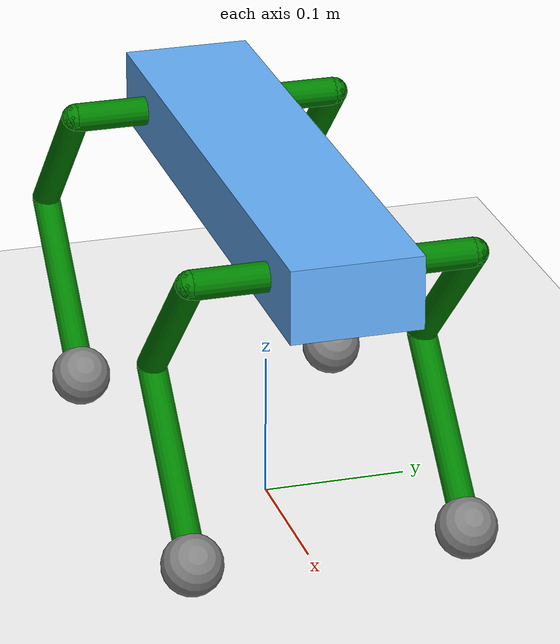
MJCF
<mujoco>
    <include file="basic_scene.xml" />

    <worldbody>
        <light diffuse=".5 .5 .5" pos="0 0 50" dir="0 0 -1"/>

        <body name="world_coordinate" pos="0 0 0">
            <geom name="ground" type="plane" size="0 0 0.03" material="matplane" rgba="1 1 1 1"/>
        </body>

        <body name="main_body" pos="0 0 0.23" euler="0 0 0">
            <joint name="rail" type="free"/>

            <geom name="box" mass="5.5" type="box" size="0.2025 0.044 0.025" rgba="0.4 0.7 1.0 1"/>
            <site name="imu" size="0.02" pos="0 0 0"/>

            <body name="FL" pos="0.1505 0.044 0">
                <joint name="ADACMotor_FL" type="hinge" pos="0 0 0" axis="1 0 0" stiffness="0.2" damping="0.5" armature="0.0065"/>
                <geom name="ADAC_FL" type="capsule" mass="0.02" size="0.01" fromto="0 0 0 0 0.05 0" rgba="0.0 0.5 0.0 1"/>

                <body name="UpLegFrame_FL" pos="0 0.05 0" euler="0 -45 0">
                    <joint name="HipMotor_FL" type="hinge" pos="0 0 0" axis="0 1 0" stiffness="0" damping="0.1" armature="0.0065"/>
                    <geom name="UpLeg_FL" type="capsule" mass="0.055" size="0.01" fromto="0 0 0 -0.14 0 0" rgba="0.0 0.5 0.0 1"/>

                    <body name="DownLegFrame_FL" pos="-0.14 0 0" euler="0 90 0">
                        <joint name="KneeMotor_FL" type="hinge" pos="0 0 0" axis="0 1 0" stiffness="0" damping="0.1" armature="0.0065"/>
                        <geom name="DownLeg_FL" type="capsule" mass="0.055" size="0.01" fromto="0 0 0 0.14 0 0" rgba="0.0 0.5 0.0 1"/>

                        <body name="FootFrame_FL" pos="0.14 0 0">
                            <geom name="Foot_FL" type="sphere" mass="0" size="0.02" rgba="1.0 1.0 0.1 1"/>
                            <site name="Foot_FL_contact" size="0.021"/>
                        </body>
                    </body>
                </body>
            </body>

            <body name="FR" pos="0.1505 -0.044 0">
                <joint name="ADACMotor_FR" type="hinge" pos="0 0 0" axis="1 0 0" stiffness="0.2" damping="0.5" armature="0.0065"/>
                <geom name="ADAC_FR" type="capsule" mass="0.02" size="0.01" fromto="0 0 0 0 -0.05 0" rgba="0.0 0.5 0.0 1"/>

                <body name="UpLegFrame_FR" pos="0 -0.05 0" euler="0 -45 0">
                    <joint name="HipMotor_FR" type="hinge" pos="0 0 0" axis="0 1 0" stiffness="0" damping="0.1" armature="0.0065"/>
                    <geom name="UpLeg_FR" type="capsule" mass="0.055" size="0.01" fromto="0 0 0 -0.14 0 0" rgba="0.0 0.5 0.0 1"/>

                    <body name="DownLegFrame_FR" pos="-0.14 0 0" euler="0 90 0">
                        <joint name="KneeMotor_FR" type="hinge" pos="0 0 0" axis="0 1 0" stiffness="0" damping="0.1" armature="0.0065"/>
                        <geom name="DownLeg_FR" type="capsule" mass="0.055" size="0.01" fromto="0 0 0 0.14 0 0" rgba="0.0 0.5 0.0 1"/>

                        <body name="FootFrame_FR" pos="0.14 0 0">
                            <geom name="Foot_FR" type="sphere" mass="0" size="0.02" rgba="1.0 1.0 0.1 1"/>
                            <site name="Foot_FR_contact" size="0.021"/>
                        </body>
                    </body>
                </body>
            </body>

            <body name="RL" pos="-0.1505 0.044 0">
                <joint name="ADACMotor_RL" type="hinge" pos="0 0 0" axis="1 0 0" stiffness="0.2" damping="0.5" armature="0.0065"/>
                <geom name="ADAC_RL" type="capsule" mass="0.02" size="0.01" fromto="0 0 0 0 0.05 0" rgba="0.0 0.5 0.0 1"/>

                <body name="UpLegFrame_RL" pos="0 0.05 0" euler="0 -45 0">
                    <joint name="HipMotor_RL" type="hinge" pos="0 0 0" axis="0 1 0" stiffness="0" damping="0.1" armature="0.0065"/>
                    <geom name="UpLeg_RL" type="capsule" mass="0.055" size="0.01" fromto="0 0 0 -0.14 0 0" rgba="0.0 0.5 0.0 1"/>

                    <body name="DownLegFrame_RL" pos="-0.14 0 0" euler="0 90 0">
                        <joint name="KneeMotor_RL" type="hinge" pos="0 0 0" axis="0 1 0" stiffness="0" damping="0.1" armature="0.0065"/>
                        <geom name="DownLeg_RL" type="capsule" mass="0.055" size="0.01" fromto="0 0 0 0.14 0 0" rgba="0.0 0.5 0.0 1"/>

                        <body name="FootFrame_RL" pos="0.14 0 0">
                            <geom name="Foot_RL" type="sphere" mass="0" size="0.02" rgba="1.0 1.0 0.1 1"/>
                            <site name="Foot_RL_contact" size="0.021"/>
                        </body>
                    </body>
                </body>
            </body>

            <body name="RR" pos="-0.1505 -0.044 0">
                <joint name="ADACMotor_RR" type="hinge" pos="0 0 0" axis="1 0 0" stiffness="0.2" damping="0.5" armature="0.0065"/>
                <geom name="ADAC_RR" type="capsule" mass="0.02" size="0.01" fromto="0 0 0 0 -0.05 0" rgba="0.0 0.5 0.0 1"/>

                <body name="UpLegFrame_RR" pos="0 -0.05 0" euler="0 -45 0">
                    <joint name="HipMotor_RR" type="hinge" pos="0 0 0" axis="0 1 0" stiffness="0" damping="0.1" armature="0.0065"/>
                    <geom name="UpLeg_RR" type="capsule" mass="0.055" size="0.01" fromto="0 0 0 -0.14 0 0" rgba="0.0 0.5 0.0 1"/>

                    <body name="DownLegFrame_RR" pos="-0.14 0 0" euler="0 90 0">
                        <joint name="KneeMotor_RR" type="hinge" pos="0 0 0" axis="0 1 0" stiffness="0" damping="0.1" armature="0.0065"/>
                        <geom name="DownLeg_RR" type="capsule" mass="0.055" size="0.01" fromto="0 0 0 0.14 0 0" rgba="0.0 0.5 0.0 1"/>

                        <body name="FootFrame_RR" pos="0.14 0 0">
                            <geom name="Foot_RR" type="sphere" mass="0" size="0.02" rgba="1.0 1.0 0.1 1"/>
                            <site name="Foot_RR_contact" size="0.021"/>
                        </body>
                    </body>
                </body>
            </body>

        </body>
    </worldbody>

    <actuator>
        <motor name="FL_Hip" joint="ADACMotor_FL" gear="1" ctrllimited="true" ctrlrange="-150 150"/>
        <motor name="FL_Up" joint="HipMotor_FL" gear="1" ctrllimited="true" ctrlrange="-50 50"/>
        <motor name="FL_Down" joint="KneeMotor_FL" gear="1" ctrllimited="true" ctrlrange="-50 50"/>

        <motor name="FR_Hip" joint="ADACMotor_FR" gear="1" ctrllimited="true" ctrlrange="-150 150"/>
        <motor name="FR_Up" joint="HipMotor_FR" gear="1" ctrllimited="true" ctrlrange="-50 50"/>
        <motor name="FR_Down" joint="KneeMotor_FR" gear="1" ctrllimited="true" ctrlrange="-50 50"/>

        <motor name="RL_Hip" joint="ADACMotor_RL" gear="1" ctrllimited="true" ctrlrange="-150 150"/>
        <motor name="RL_Up" joint="HipMotor_RL" gear="1" ctrllimited="true" ctrlrange="-50 50"/>
        <motor name="RL_Down" joint="KneeMotor_RL" gear="1" ctrllimited="true" ctrlrange="-50 50"/>

        <motor name="RR_Hip" joint="ADACMotor_RR" gear="1" ctrllimited="true" ctrlrange="-150 150"/>
        <motor name="RR_Up" joint="HipMotor_RR" gear="1" ctrllimited="true" ctrlrange="-50 50"/>
        <motor name="RR_Down" joint="KneeMotor_RR" gear="1" ctrllimited="true" ctrlrange="-50 50"/>
    </actuator>

    <sensor>
        <gyro name="COM_angVel" site="imu"/>
        <accelerometer name="COM_linAcc" site="imu"/>

        <actuatorpos name="FL_Hip" actuator="FL_Hip"/>
        <actuatorpos name="FL_Up" actuator="FL_Up"/>
        <actuatorpos name="FL_Down" actuator="FL_Down"/>

        <actuatorpos name="FR_Hip" actuator="FR_Hip"/>
        <actuatorpos name="FR_Up" actuator="FR_Up"/>
        <actuatorpos name="FR_Down" actuator="FR_Down"/>

        <actuatorpos name="RL_Hip" actuator="RL_Hip"/>
        <actuatorpos name="RL_Up" actuator="RL_Up"/>
        <actuatorpos name="RL_Down" actuator="RL_Down"/>

        <actuatorpos name="RR_Hip" actuator="RR_Hip"/>
        <actuatorpos name="RR_Up" actuator="RR_Up"/>
        <actuatorpos name="RR_Down" actuator="RR_Down"/>

        <framepos name="COM_linPos" objtype="site" objname="imu"/>
        <framelinvel name="COM_linVel" objtype="site" objname="imu"/>
        <framelinacc name="COM_linAcc_ref" objtype="site" objname="imu"/>
        <framequat name="COM_quat" objtype="site" objname="imu"/>

        <touch name="FL_contact" site="Foot_FL_contact"/>
        <touch name="FR_contact" site="Foot_FR_contact"/>
        <touch name="RL_contact" site="Foot_RL_contact"/>
        <touch name="RR_contact" site="Foot_RR_contact"/>
    </sensor>

</mujoco>

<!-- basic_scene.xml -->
<mujoco>
    <compiler angle="degree"/>

    <asset>
        <texture type="skybox" builtin="gradient" rgb1="1 1 1" rgb2=".6 .8 1" width="256" height="256"/>
        <texture name="texplane" type="2d" builtin="checker" rgb1=".9 .9 .9" rgb2="1 1 1" width="512" height="512" mark="cross" markrgb=".1 .1 .1"/>

        <material name="matplane" reflectance="0.3" texture="texplane" texrepeat="2 2" texuniform="true"/>
    </asset>

    <option timestep="0.001" o_solimp="0.9 0.95 0.001 0.5 2" o_solref="0.02 1" cone="elliptic"
        impratio="3.0" noslip_iterations="5" noslip_tolerance="1e-8">
        <flag override="enable"/>
    </option>

    <default>
        <geom type="box" mass="0.001" rgba=".95 .95 .95 1"/>
    </default>
</mujoco>
